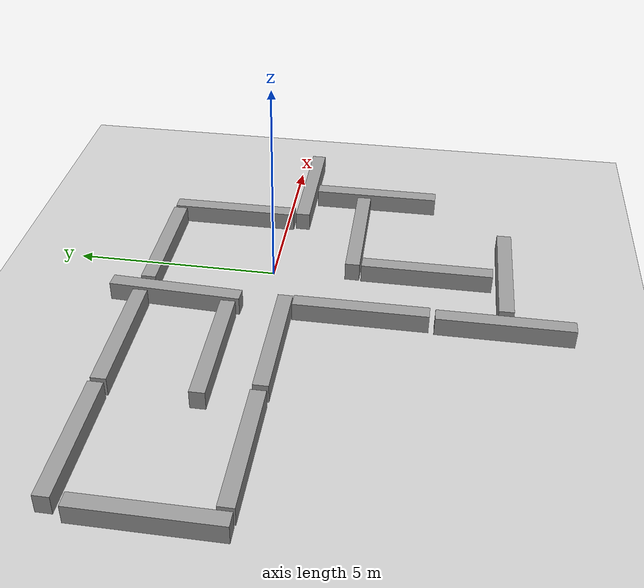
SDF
<sdf version="1.6">
 <world name="default">
  <light name="sun" type="directional">
   <pose>0 0 10 0 -0 0</pose>
   <diffuse>0.8 0.8 0.8 1</diffuse>
   <specular>0.2 0.2 0.2 1</specular>
   <attenuation>
    <range>1000</range>
    <constant>0.9</constant>
    <linear>0.01</linear>
    <quadratic>0.001</quadratic>
   </attenuation>
   <direction>-0.5 0.1 -0.9</direction>
  </light>
  <model name="ground_plane">
   <static>1</static>
   <link name="link">
    <collision name="collision">
     <geometry><plane><normal>0 0 1</normal><size>100 100</size></plane></geometry>
     <surface>
      <contact><collide_bitmask>65535</collide_bitmask></contact>
      <friction><ode><mu>100</mu><mu2>50</mu2></ode></friction>
     </surface>
    </collision>
    <visual name="visual">
     <cast_shadows>0</cast_shadows>
     <geometry><plane><normal>0 0 1</normal><size>100 100</size></plane></geometry>
     <material>
      <script><uri>file://media/materials/scripts/gazebo.material</uri><name>Gazebo/Grey</name></script>
     </material>
    </visual>
   </link>
  </model>
  <gravity>0 0 -9.8</gravity>
  <magnetic_field>6e-06 2.3e-05 -4.2e-05</magnetic_field>
  <atmosphere type="adiabatic"/>
  <physics name="default_physics" default="0" type="ode">
   <max_step_size>0.001</max_step_size>
   <real_time_factor>1</real_time_factor>
   <real_time_update_rate>1000</real_time_update_rate>
  </physics>
  <scene><ambient>0.4 0.4 0.4 1</ambient><background>0.7 0.7 0.7 1</background><shadows>1</shadows></scene>
  <spherical_coordinates>
   <surface_model>EARTH_WGS84</surface_model>
   <latitude_deg>0</latitude_deg>
   <longitude_deg>0</longitude_deg>
   <elevation>0</elevation>
   <heading_deg>0</heading_deg>
  </spherical_coordinates>
  <model name="unit_box">
   <pose>-1.51635 2.1127 0.230089 -1e-06 0.000242 1.52786</pose>
   <link name="link">
    <inertial>
     <mass>1</mass>
     <inertia>
      <ixx>0.166667</ixx>
      <ixy>0</ixy>
      <ixz>0</ixz>
      <iyy>0.166667</iyy>
      <iyz>0</iyz>
      <izz>0.166667</izz>
     </inertia>
    </inertial>
    <collision name="collision"><geometry><box><size>3.19448 0.355761 0.46095</size></box></geometry></collision>
    <visual name="visual">
     <geometry><box><size>3.19448 0.355761 0.46095</size></box></geometry>
     <material>
      <script><name>Gazebo/Grey</name><uri>file://media/materials/scripts/gazebo.material</uri></script>
     </material>
    </visual>
   </link>
  </model>
  <model name="unit_box_clone">
   <pose>3.75034 -0.415131 0.230089 -1e-06 0.000242 -0.002753</pose>
   <link name="link">
    <inertial>
     <mass>1</mass>
     <inertia>
      <ixx>0.166667</ixx>
      <ixy>0</ixy>
      <ixz>0</ixz>
      <iyy>0.166667</iyy>
      <iyz>0</iyz>
      <izz>0.166667</izz>
     </inertia>
    </inertial>
    <collision name="collision"><geometry><box><size>3.19448 0.355761 0.46095</size></box></geometry></collision>
    <visual name="visual">
     <geometry><box><size>3.19448 0.355761 0.46095</size></box></geometry>
     <material>
      <script><name>Gazebo/Grey</name><uri>file://media/materials/scripts/gazebo.material</uri></script>
     </material>
    </visual>
   </link>
  </model>
  <model name="unit_box_clone_0">
   <pose>-3.03635 -0.529396 0.230089 1e-06 -0.000242 -0.002658</pose>
   <link name="link">
    <inertial>
     <mass>1</mass>
     <inertia>
      <ixx>0.166667</ixx>
      <ixy>0</ixy>
      <ixz>0</ixz>
      <iyy>0.166667</iyy>
      <iyz>0</iyz>
      <izz>0.166667</izz>
     </inertia>
    </inertial>
    <collision name="collision"><geometry><box><size>3.19448 0.355761 0.46095</size></box></geometry></collision>
    <visual name="visual">
     <geometry><box><size>3.19448 0.355761 0.46095</size></box></geometry>
     <material>
      <script><name>Gazebo/Grey</name><uri>file://media/materials/scripts/gazebo.material</uri></script>
     </material>
    </visual>
   </link>
  </model>
  <model name="unit_box_clone_1">
   <pose>-3.35332 2.92084 0.230089 -1e-06 0.000242 0.000976</pose>
   <link name="link">
    <inertial>
     <mass>1</mass>
     <inertia>
      <ixx>0.166667</ixx>
      <ixy>0</ixy>
      <ixz>0</ixz>
      <iyy>0.166667</iyy>
      <iyz>0</iyz>
      <izz>0.166667</izz>
     </inertia>
    </inertial>
    <collision name="collision"><geometry><box><size>3.19448 0.355761 0.46095</size></box></geometry></collision>
    <visual name="visual">
     <geometry><box><size>3.19448 0.355761 0.46095</size></box></geometry>
     <material>
      <script><name>Gazebo/Grey</name><uri>file://media/materials/scripts/gazebo.material</uri></script>
     </material>
    </visual>
   </link>
  </model>
  <model name="unit_box_clone_2">
   <pose>1.64865 -1.95097 0.230089 1e-06 0.000242 0.00579</pose>
   <link name="link">
    <inertial>
     <mass>1</mass>
     <inertia>
      <ixx>0.166667</ixx>
      <ixy>0</ixy>
      <ixz>0</ixz>
      <iyy>0.166667</iyy>
      <iyz>0</iyz>
      <izz>0.166667</izz>
     </inertia>
    </inertial>
    <collision name="collision"><geometry><box><size>3.19448 0.355761 0.46095</size></box></geometry></collision>
    <visual name="visual">
     <geometry><box><size>3.19448 0.355761 0.46095</size></box></geometry>
     <material>
      <script><name>Gazebo/Grey</name><uri>file://media/materials/scripts/gazebo.material</uri></script>
     </material>
    </visual>
   </link>
  </model>
  <model name="unit_box_clone_3">
   <pose>0.210647 -3.77938 0.230089 1e-06 -0.000242 1.57215</pose>
   <link name="link">
    <inertial>
     <mass>1</mass>
     <inertia>
      <ixx>0.166667</ixx>
      <ixy>0</ixy>
      <ixz>0</ixz>
      <iyy>0.166667</iyy>
      <iyz>0</iyz>
      <izz>0.166667</izz>
     </inertia>
    </inertial>
    <collision name="collision"><geometry><box><size>3.19448 0.355761 0.46095</size></box></geometry></collision>
    <visual name="visual">
     <geometry><box><size>3.19448 0.355761 0.46095</size></box></geometry>
     <material>
      <script><name>Gazebo/Grey</name><uri>file://media/materials/scripts/gazebo.material</uri></script>
     </material>
    </visual>
   </link>
  </model>
  <model name="unit_box_clone_4">
   <pose>-1.58384 -2.33398 0.230089 1e-06 -0.000242 1.57222</pose>
   <link name="link">
    <inertial>
     <mass>1</mass>
     <inertia>
      <ixx>0.166667</ixx>
      <ixy>0</ixy>
      <ixz>0</ixz>
      <iyy>0.166667</iyy>
      <iyz>0</iyz>
      <izz>0.166667</izz>
     </inertia>
    </inertial>
    <collision name="collision"><geometry><box><size>3.19448 0.355761 0.46095</size></box></geometry></collision>
    <visual name="visual">
     <geometry><box><size>3.19448 0.355761 0.46095</size></box></geometry>
     <material>
      <script><name>Gazebo/Grey</name><uri>file://media/materials/scripts/gazebo.material</uri></script>
     </material>
    </visual>
   </link>
  </model>
  <model name="unit_box_clone_5">
   <pose>2.25325 1.42239 0.230089 1e-06 -0.000242 1.57238</pose>
   <link name="link">
    <inertial>
     <mass>1</mass>
     <inertia>
      <ixx>0.166667</ixx>
      <ixy>0</ixy>
      <ixz>0</ixz>
      <iyy>0.166667</iyy>
      <iyz>0</iyz>
      <izz>0.166667</izz>
     </inertia>
    </inertial>
    <collision name="collision"><geometry><box><size>3.19448 0.355761 0.46095</size></box></geometry></collision>
    <visual name="visual">
     <geometry><box><size>3.19448 0.355761 0.46095</size></box></geometry>
     <material>
      <script><name>Gazebo/Grey</name><uri>file://media/materials/scripts/gazebo.material</uri></script>
     </material>
    </visual>
   </link>
  </model>
  <model name="unit_box_clone_2_clone">
   <pose>0.396355 2.87535 0.230089 1e-06 -0.000242 -0.00015</pose>
   <link name="link">
    <inertial>
     <mass>1</mass>
     <inertia>
      <ixx>0.166667</ixx>
      <ixy>0</ixy>
      <ixz>0</ixz>
      <iyy>0.166667</iyy>
      <iyz>0</iyz>
      <izz>0.166667</izz>
     </inertia>
    </inertial>
    <collision name="collision"><geometry><box><size>3.19448 0.355761 0.46095</size></box></geometry></collision>
    <visual name="visual">
     <geometry><box><size>3.19448 0.355761 0.46095</size></box></geometry>
     <material>
      <script><name>Gazebo/Grey</name><uri>file://media/materials/scripts/gazebo.material</uri></script>
     </material>
    </visual>
   </link>
  </model>
  <model name="unit_box_clone_2_clone_0">
   <pose>-3.45495 0.758083 0.230089 -1e-06 -0.000242 0.005724</pose>
   <link name="link">
    <inertial>
     <mass>1</mass>
     <inertia>
      <ixx>0.166667</ixx>
      <ixy>0</ixy>
      <ixz>0</ixz>
      <iyy>0.166667</iyy>
      <iyz>0</iyz>
      <izz>0.166667</izz>
     </inertia>
    </inertial>
    <collision name="collision"><geometry><box><size>3.19448 0.355761 0.46095</size></box></geometry></collision>
    <visual name="visual">
     <geometry><box><size>3.19448 0.355761 0.46095</size></box></geometry>
     <material>
      <script><name>Gazebo/Grey</name><uri>file://media/materials/scripts/gazebo.material</uri></script>
     </material>
    </visual>
   </link>
  </model>
  <model name="unit_box_clone_3_clone">
   <pose>-8.23836 0.935808 0.230089 -1e-06 -0.000242 1.57434</pose>
   <link name="link">
    <inertial>
     <mass>1</mass>
     <inertia>
      <ixx>0.166667</ixx>
      <ixy>0</ixy>
      <ixz>0</ixz>
      <iyy>0.166667</iyy>
      <iyz>0</iyz>
      <izz>0.166667</izz>
     </inertia>
    </inertial>
    <collision name="collision"><geometry><box><size>3.19448 0.355761 0.46095</size></box></geometry></collision>
    <visual name="visual">
     <geometry><box><size>3.19448 0.355761 0.46095</size></box></geometry>
     <material>
      <script><name>Gazebo/Grey</name><uri>file://media/materials/scripts/gazebo.material</uri></script>
     </material>
    </visual>
   </link>
  </model>
  <model name="unit_box_clone_0_clone">
   <pose>-6.37904 -0.506896 0.230089 1e-06 -0.000242 -0.00265</pose>
   <link name="link">
    <inertial>
     <mass>1</mass>
     <inertia>
      <ixx>0.166667</ixx>
      <ixy>0</ixy>
      <ixz>0</ixz>
      <iyy>0.166667</iyy>
      <iyz>0</iyz>
      <izz>0.166667</izz>
     </inertia>
    </inertial>
    <collision name="collision"><geometry><box><size>3.19448 0.355761 0.46095</size></box></geometry></collision>
    <visual name="visual">
     <geometry><box><size>3.19448 0.355761 0.46095</size></box></geometry>
     <material>
      <script><name>Gazebo/Grey</name><uri>file://media/materials/scripts/gazebo.material</uri></script>
     </material>
    </visual>
   </link>
  </model>
  <model name="unit_box_clone_0_clone_clone">
   <pose>-6.65386 2.93873 0.230089 -1e-06 0.000242 -0.002649</pose>
   <link name="link">
    <inertial>
     <mass>1</mass>
     <inertia>
      <ixx>0.166667</ixx>
      <ixy>0</ixy>
      <ixz>0</ixz>
      <iyy>0.166667</iyy>
      <iyz>0</iyz>
      <izz>0.166667</izz>
     </inertia>
    </inertial>
    <collision name="collision"><geometry><box><size>3.19448 0.355761 0.46095</size></box></geometry></collision>
    <visual name="visual">
     <geometry><box><size>3.19448 0.355761 0.46095</size></box></geometry>
     <material>
      <script><name>Gazebo/Grey</name><uri>file://media/materials/scripts/gazebo.material</uri></script>
     </material>
    </visual>
   </link>
  </model>
  <model name="unit_box_clone_3_clone_0">
   <pose>-1.62215 -5.65797 0.230089 1e-06 -0.000242 1.57216</pose>
   <link name="link">
    <inertial>
     <mass>1</mass>
     <inertia>
      <ixx>0.166667</ixx>
      <ixy>0</ixy>
      <ixz>0</ixz>
      <iyy>0.166667</iyy>
      <iyz>0</iyz>
      <izz>0.166667</izz>
     </inertia>
    </inertial>
    <collision name="collision"><geometry><box><size>3.19448 0.355761 0.46095</size></box></geometry></collision>
    <visual name="visual">
     <geometry><box><size>3.19448 0.355761 0.46095</size></box></geometry>
     <material>
      <script><name>Gazebo/Grey</name><uri>file://media/materials/scripts/gazebo.material</uri></script>
     </material>
    </visual>
   </link>
  </model>
  <model name="unit_box_clone_3_clone_0_clone">
   <pose>3.57124 -2.25248 0.230089 -1e-06 0.000242 1.57216</pose>
   <link name="link">
    <inertial>
     <mass>1</mass>
     <inertia>
      <ixx>0.166667</ixx>
      <ixy>0</ixy>
      <ixz>0</ixz>
      <iyy>0.166667</iyy>
      <iyz>0</iyz>
      <izz>0.166667</izz>
     </inertia>
    </inertial>
    <collision name="collision"><geometry><box><size>3.19448 0.355761 0.46095</size></box></geometry></collision>
    <visual name="visual">
     <geometry><box><size>3.19448 0.355761 0.46095</size></box></geometry>
     <material>
      <script><name>Gazebo/Grey</name><uri>file://media/materials/scripts/gazebo.material</uri></script>
     </material>
    </visual>
   </link>
  </model>
  <model name="unit_box_clone_2_clone_1">
   <pose>0.311115 -5.67872 0.230089 -1e-06 -0.000242 0.00579</pose>
   <link name="link">
    <inertial>
     <mass>1</mass>
     <inertia>
      <ixx>0.166667</ixx>
      <ixy>0</ixy>
      <ixz>0</ixz>
      <iyy>0.166667</iyy>
      <iyz>0</iyz>
      <izz>0.166667</izz>
     </inertia>
    </inertial>
    <collision name="collision"><geometry><box><size>3.19448 0.355761 0.46095</size></box></geometry></collision>
    <visual name="visual">
     <geometry><box><size>3.19448 0.355761 0.46095</size></box></geometry>
     <material>
      <script><name>Gazebo/Grey</name><uri>file://media/materials/scripts/gazebo.material</uri></script>
     </material>
    </visual>
   </link>
  </model>
 </world>
</sdf>
